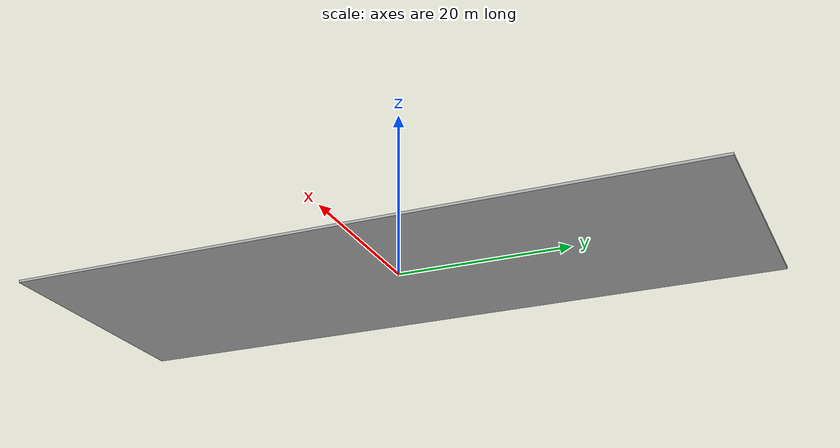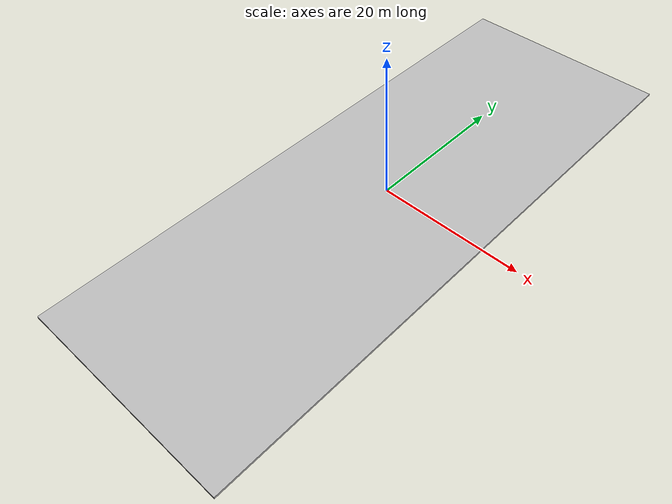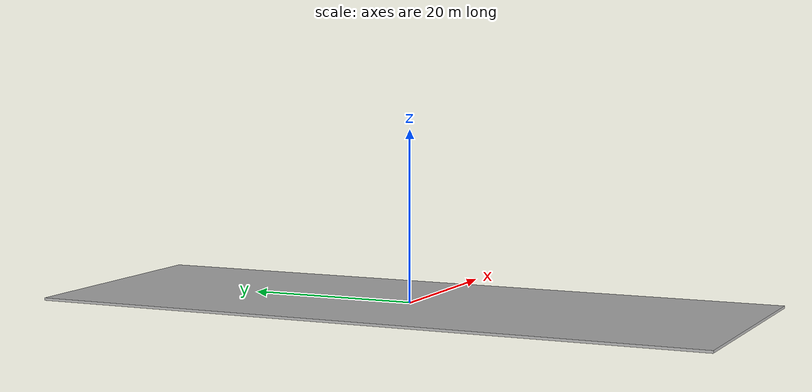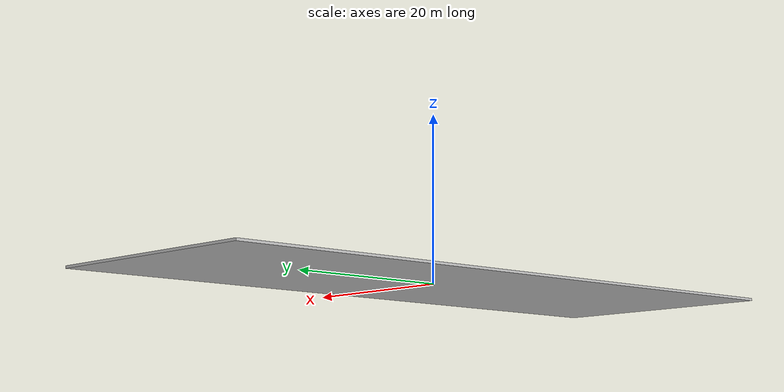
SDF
<?xml version="1.0" ?>
<sdf version="1.5">
  <model name="parking_lot">
    <static>true</static>
    <link name="link">
      <collision name="collision">
        <geometry>
          <box>
            <size>30 80 .3</size>
          </box>
        </geometry>
      </collision>
      <visual name="visual">
        <cast_shadows>false</cast_shadows>
        <geometry>
          <box>
            <size>30 80 .3</size>
          </box>
        </geometry>
        <material>
          <script>
            <uri>model://parking_lot/materials/scripts</uri>
            <uri>model://parking_lot/materials/textures</uri>
            <name>vrc/lane_cross</name>
          </script>
        </material>
      </visual>
    </link>
  </model>
</sdf>
